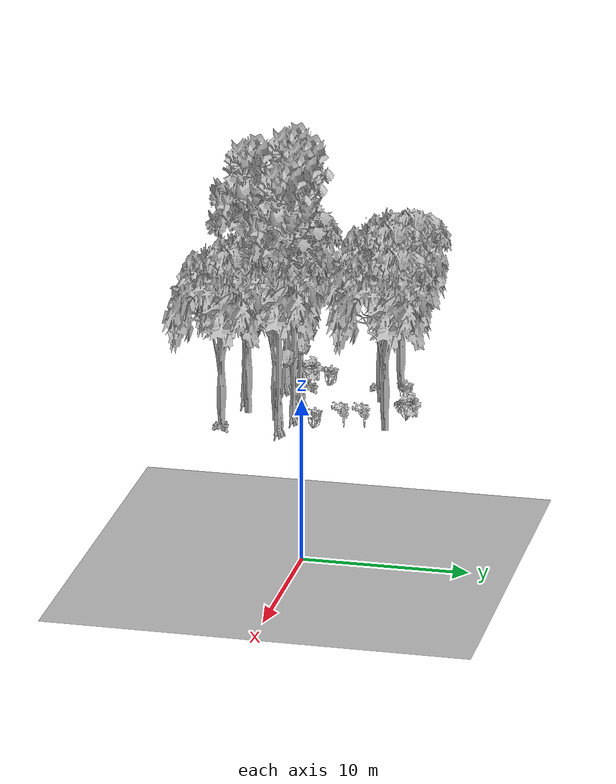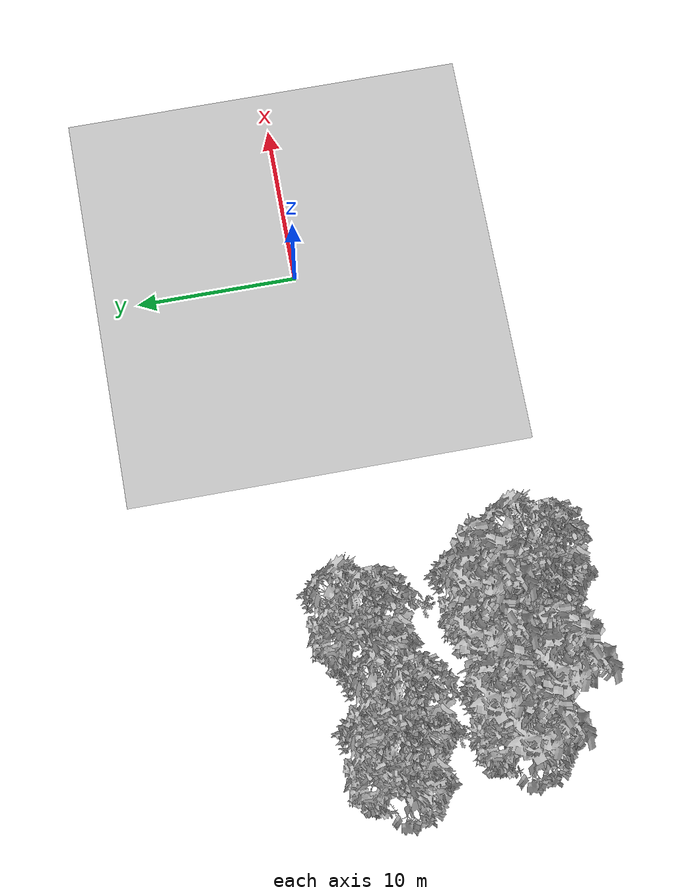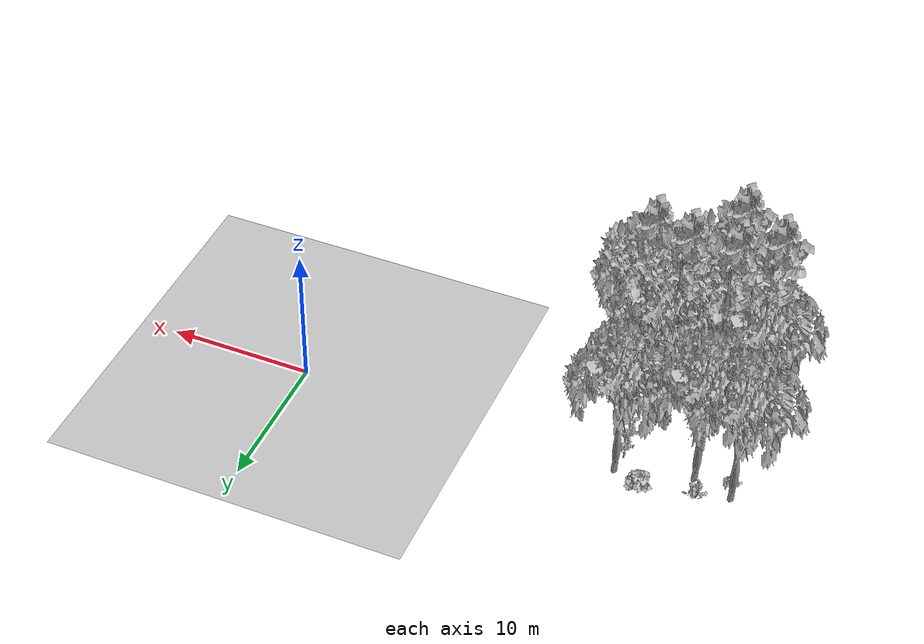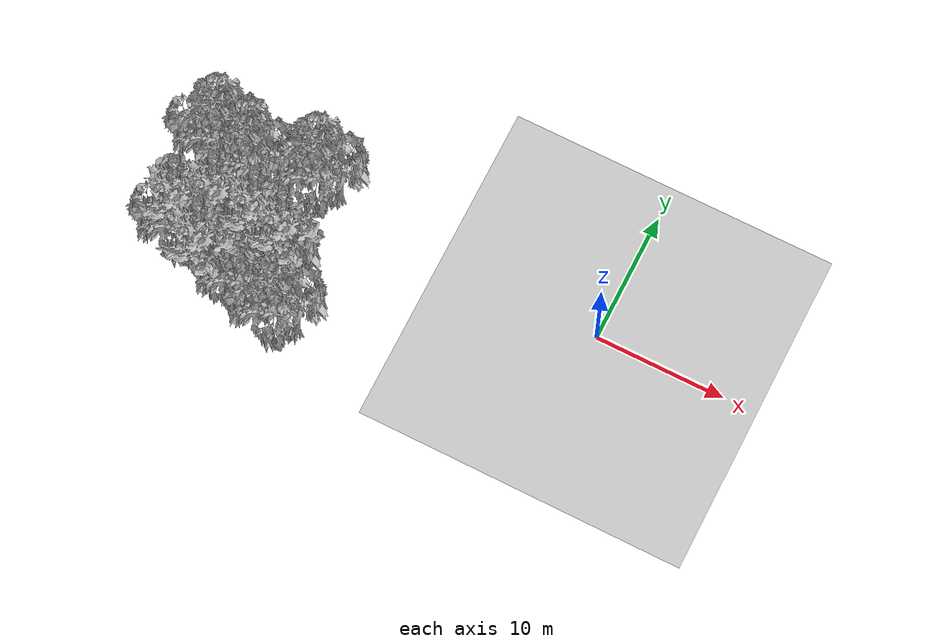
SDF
<sdf version="1.7">
 <world name="default">
  <model name="ground_plane">
   <static>1</static>
   <link name="link">
    <collision name="collision">
     <pose>-50 0 0 0 -0 0</pose>
     <geometry><plane><normal>0 0 1</normal><size>80 80</size></plane></geometry>
     <surface><contact><ode><min_depth>0.01</min_depth><max_vel>0</max_vel></ode></contact></surface>
    </collision>
    <visual name="grass">
     <cast_shadows>0</cast_shadows>
     <geometry>
      <mesh>
       <scale>0.46714285714285714 0.46714285714285714 0.1</scale>
       <uri>file://grass_plane/meshes/grass_plane.dae</uri>
      </mesh>
     </geometry>
    </visual>
   </link>
  </model>
  <model name="Tree 31">
   <static>1</static>
   <pose>-23.559283238357317 -5.882718172223704 0 1.57079 -0 0</pose>
   <link name="link">
    <collision name="collision">
     <geometry><mesh><scale>3.5 5 3.5</scale><uri>model://tree_9/meshes/tree_9.obj</uri></mesh></geometry>
    </collision>
    <visual name="visual">
     <geometry><mesh><scale>3.5 5 3.5</scale><uri>model://tree_9/meshes/tree_9.obj</uri></mesh></geometry>
    </visual>
   </link>
  </model>
  <model name="Tree 134">
   <static>1</static>
   <pose>-22.439007447150463 -6.787553306653429 0 1.57079 -0 0</pose>
   <link name="link">
    <collision name="collision">
     <geometry><mesh><scale>3.5 5 3.5</scale><uri>model://tree_2/meshes/tree_2.obj</uri></mesh></geometry>
    </collision>
    <visual name="visual">
     <geometry><mesh><scale>3.5 5 3.5</scale><uri>model://tree_2/meshes/tree_2.obj</uri></mesh></geometry>
    </visual>
   </link>
  </model>
  <model name="Tree 148">
   <static>1</static>
   <pose>-23.436304773743384 -8.826852472333915 0 1.57079 -0 0</pose>
   <link name="link">
    <collision name="collision">
     <geometry><mesh><scale>3.5 5 3.5</scale><uri>model://tree_2/meshes/tree_2.obj</uri></mesh></geometry>
    </collision>
    <visual name="visual">
     <geometry><mesh><scale>3.5 5 3.5</scale><uri>model://tree_2/meshes/tree_2.obj</uri></mesh></geometry>
    </visual>
   </link>
  </model>
  <model name="Tree 236">
   <static>1</static>
   <pose>-21.16422222535315 -6.3117553518449725 0 1.57079 -0 0</pose>
   <link name="link">
    <collision name="collision">
     <geometry><mesh><scale>3.5 5 3.5</scale><uri>model://tree_9/meshes/tree_9.obj</uri></mesh></geometry>
    </collision>
    <visual name="visual">
     <geometry><mesh><scale>3.5 5 3.5</scale><uri>model://tree_9/meshes/tree_9.obj</uri></mesh></geometry>
    </visual>
   </link>
  </model>
  <model name="Tree 409">
   <static>1</static>
   <pose>-28.99882033018011 -7.186575914753767 0 1.57079 -0 0</pose>
   <link name="link">
    <collision name="collision">
     <geometry><mesh><scale>3.5 5 3.5</scale><uri>model://tree_2/meshes/tree_2.obj</uri></mesh></geometry>
    </collision>
    <visual name="visual">
     <geometry><mesh><scale>3.5 5 3.5</scale><uri>model://tree_2/meshes/tree_2.obj</uri></mesh></geometry>
    </visual>
   </link>
  </model>
  <model name="Tree 441">
   <static>1</static>
   <pose>-27.199134415844032 -1.0520776710191484 0 1.57079 -0 0</pose>
   <link name="link">
    <collision name="collision">
     <geometry><mesh><scale>3.5 5 3.5</scale><uri>model://tree_2/meshes/tree_2.obj</uri></mesh></geometry>
    </collision>
    <visual name="visual">
     <geometry><mesh><scale>3.5 5 3.5</scale><uri>model://tree_2/meshes/tree_2.obj</uri></mesh></geometry>
    </visual>
   </link>
  </model>
  <model name="Tree 448">
   <static>1</static>
   <pose>-25.920989045778875 -9.600247842568244 0 1.57079 -0 0</pose>
   <link name="link">
    <collision name="collision">
     <geometry><mesh><scale>3.5 5 3.5</scale><uri>model://tree_9/meshes/tree_9.obj</uri></mesh></geometry>
    </collision>
    <visual name="visual">
     <geometry><mesh><scale>3.5 5 3.5</scale><uri>model://tree_9/meshes/tree_9.obj</uri></mesh></geometry>
    </visual>
   </link>
  </model>
  <model name="Tree 499">
   <static>1</static>
   <pose>-26.57805267070043 -6.1321869941101 0 1.57079 -0 0</pose>
   <link name="link">
    <collision name="collision">
     <geometry><mesh><scale>3.5 5 3.5</scale><uri>model://tree_9/meshes/tree_9.obj</uri></mesh></geometry>
    </collision>
    <visual name="visual">
     <geometry><mesh><scale>3.5 5 3.5</scale><uri>model://tree_9/meshes/tree_9.obj</uri></mesh></geometry>
    </visual>
   </link>
  </model>
  <model name="Tree 535">
   <static>1</static>
   <pose>-20.328314954295987 -9.790764906039307 0 1.57079 -0 0</pose>
   <link name="link">
    <collision name="collision">
     <geometry><mesh><scale>3.5 5 3.5</scale><uri>model://tree_2/meshes/tree_2.obj</uri></mesh></geometry>
    </collision>
    <visual name="visual">
     <geometry><mesh><scale>3.5 5 3.5</scale><uri>model://tree_2/meshes/tree_2.obj</uri></mesh></geometry>
    </visual>
   </link>
  </model>
  <model name="Tree 542">
   <static>1</static>
   <pose>-28.83078215410676 -7.6029005103628435 0 1.57079 -0 0</pose>
   <link name="link">
    <collision name="collision">
     <geometry><mesh><scale>3.5 5 3.5</scale><uri>model://tree_9/meshes/tree_9.obj</uri></mesh></geometry>
    </collision>
    <visual name="visual">
     <geometry><mesh><scale>3.5 5 3.5</scale><uri>model://tree_9/meshes/tree_9.obj</uri></mesh></geometry>
    </visual>
   </link>
  </model>
  <model name="Tree 616">
   <static>1</static>
   <pose>-29.859733364812833 -0.2908132807416024 0 1.57079 -0 0</pose>
   <link name="link">
    <collision name="collision">
     <geometry><mesh><scale>3.5 5 3.5</scale><uri>model://tree_2/meshes/tree_2.obj</uri></mesh></geometry>
    </collision>
    <visual name="visual">
     <geometry><mesh><scale>3.5 5 3.5</scale><uri>model://tree_2/meshes/tree_2.obj</uri></mesh></geometry>
    </visual>
   </link>
  </model>
  <model name="Tree 637">
   <static>1</static>
   <pose>-22.232768800525385 0.27457701553458236 0 1.57079 -0 0</pose>
   <link name="link">
    <collision name="collision">
     <geometry><mesh><scale>3.5 5 3.5</scale><uri>model://tree_2/meshes/tree_2.obj</uri></mesh></geometry>
    </collision>
    <visual name="visual">
     <geometry><mesh><scale>3.5 5 3.5</scale><uri>model://tree_2/meshes/tree_2.obj</uri></mesh></geometry>
    </visual>
   </link>
  </model>
  <model name="Bush 126">
   <static>1</static>
   <pose>-30.672696002418224 -8.175408628782776 0 1.57079 -0 0</pose>
   <link name="link">
    <collision name="collision">
     <geometry><mesh><scale>2 2 2</scale><uri>model://bush_2/meshes/bush_2.obj</uri></mesh></geometry>
     <surface><contact><collide_without_contact>false</collide_without_contact></contact></surface>
    </collision>
    <visual name="visual">
     <geometry><mesh><scale>2 2 2</scale><uri>model://bush_2/meshes/bush_2.obj</uri></mesh></geometry>
    </visual>
   </link>
  </model>
  <model name="Bush 185">
   <static>1</static>
   <pose>-22.129775853797103 -2.3471974174886796 0 1.57079 -0 0</pose>
   <link name="link">
    <collision name="collision">
     <geometry><mesh><scale>2 2 2</scale><uri>model://bush_5/meshes/bush_5.obj</uri></mesh></geometry>
     <surface><contact><collide_without_contact>false</collide_without_contact></contact></surface>
    </collision>
    <visual name="visual">
     <geometry><mesh><scale>2 2 2</scale><uri>model://bush_5/meshes/bush_5.obj</uri></mesh></geometry>
    </visual>
   </link>
  </model>
  <model name="Bush 217">
   <static>1</static>
   <pose>-21.545383965509565 -4.174907011909738 0 1.57079 -0 0</pose>
   <link name="link">
    <collision name="collision">
     <geometry><mesh><scale>2 2 2</scale><uri>model://bush_4/meshes/bush_4.obj</uri></mesh></geometry>
     <surface><contact><collide_without_contact>false</collide_without_contact></contact></surface>
    </collision>
    <visual name="visual">
     <geometry><mesh><scale>2 2 2</scale><uri>model://bush_4/meshes/bush_4.obj</uri></mesh></geometry>
    </visual>
   </link>
  </model>
  <model name="Bush 305">
   <static>1</static>
   <pose>-29.325650063724545 -4.84394344755902 0 1.57079 -0 0</pose>
   <link name="link">
    <collision name="collision">
     <geometry><mesh><scale>2 2 2</scale><uri>model://bush_4/meshes/bush_4.obj</uri></mesh></geometry>
     <surface><contact><collide_without_contact>false</collide_without_contact></contact></surface>
    </collision>
    <visual name="visual">
     <geometry><mesh><scale>2 2 2</scale><uri>model://bush_4/meshes/bush_4.obj</uri></mesh></geometry>
    </visual>
   </link>
  </model>
  <model name="Bush 337">
   <static>1</static>
   <pose>-24.123207015186324 1.2416530876515708 0 1.57079 -0 0</pose>
   <link name="link">
    <collision name="collision">
     <geometry><mesh><scale>2 2 2</scale><uri>model://bush_1/meshes/bush_1.obj</uri></mesh></geometry>
     <surface><contact><collide_without_contact>false</collide_without_contact></contact></surface>
    </collision>
    <visual name="visual">
     <geometry><mesh><scale>2 2 2</scale><uri>model://bush_1/meshes/bush_1.obj</uri></mesh></geometry>
    </visual>
   </link>
  </model>
  <model name="Bush 360">
   <static>1</static>
   <pose>-27.63026994998932 0.42416877744030046 0 1.57079 -0 0</pose>
   <link name="link">
    <collision name="collision">
     <geometry><mesh><scale>2 2 2</scale><uri>model://bush_4/meshes/bush_4.obj</uri></mesh></geometry>
     <surface><contact><collide_without_contact>false</collide_without_contact></contact></surface>
    </collision>
    <visual name="visual">
     <geometry><mesh><scale>2 2 2</scale><uri>model://bush_4/meshes/bush_4.obj</uri></mesh></geometry>
    </visual>
   </link>
  </model>
  <model name="Bush 461">
   <static>1</static>
   <pose>-29.403846418656205 -1.7071825997461971 0 1.57079 -0 0</pose>
   <link name="link">
    <collision name="collision">
     <geometry><mesh><scale>2 2 2</scale><uri>model://bush_2/meshes/bush_2.obj</uri></mesh></geometry>
     <surface><contact><collide_without_contact>false</collide_without_contact></contact></surface>
    </collision>
    <visual name="visual">
     <geometry><mesh><scale>2 2 2</scale><uri>model://bush_2/meshes/bush_2.obj</uri></mesh></geometry>
    </visual>
   </link>
  </model>
  <model name="Bush 537">
   <static>1</static>
   <pose>-22.28310649508558 -1.0452536592162787 0 1.57079 -0 0</pose>
   <link name="link">
    <collision name="collision">
     <geometry><mesh><scale>2 2 2</scale><uri>model://bush_5/meshes/bush_5.obj</uri></mesh></geometry>
     <surface><contact><collide_without_contact>false</collide_without_contact></contact></surface>
    </collision>
    <visual name="visual">
     <geometry><mesh><scale>2 2 2</scale><uri>model://bush_5/meshes/bush_5.obj</uri></mesh></geometry>
    </visual>
   </link>
  </model>
  <model name="Bush 540">
   <static>1</static>
   <pose>-20.353326490272465 -9.865393924997086 0 1.57079 -0 0</pose>
   <link name="link">
    <collision name="collision">
     <geometry><mesh><scale>2 2 2</scale><uri>model://bush_2/meshes/bush_2.obj</uri></mesh></geometry>
     <surface><contact><collide_without_contact>false</collide_without_contact></contact></surface>
    </collision>
    <visual name="visual">
     <geometry><mesh><scale>2 2 2</scale><uri>model://bush_2/meshes/bush_2.obj</uri></mesh></geometry>
    </visual>
   </link>
  </model>
  <model name="Bush 583">
   <static>1</static>
   <pose>-28.48214196570299 -5.965247626178048 0 1.57079 -0 0</pose>
   <link name="link">
    <collision name="collision">
     <geometry><mesh><scale>2 2 2</scale><uri>model://bush_2/meshes/bush_2.obj</uri></mesh></geometry>
     <surface><contact><collide_without_contact>false</collide_without_contact></contact></surface>
    </collision>
    <visual name="visual">
     <geometry><mesh><scale>2 2 2</scale><uri>model://bush_2/meshes/bush_2.obj</uri></mesh></geometry>
    </visual>
   </link>
  </model>
  <model name="Bush 612">
   <static>1</static>
   <pose>-29.25746657621582 -6.254675374459936 0 1.57079 -0 0</pose>
   <link name="link">
    <collision name="collision">
     <geometry><mesh><scale>2 2 2</scale><uri>model://bush_1/meshes/bush_1.obj</uri></mesh></geometry>
     <surface><contact><collide_without_contact>false</collide_without_contact></contact></surface>
    </collision>
    <visual name="visual">
     <geometry><mesh><scale>2 2 2</scale><uri>model://bush_1/meshes/bush_1.obj</uri></mesh></geometry>
    </visual>
   </link>
  </model>
 </world>
</sdf>
